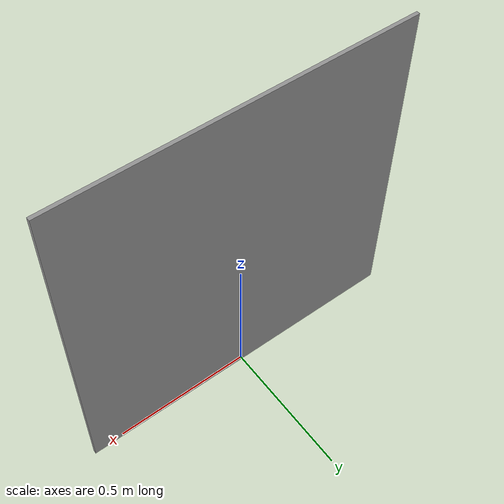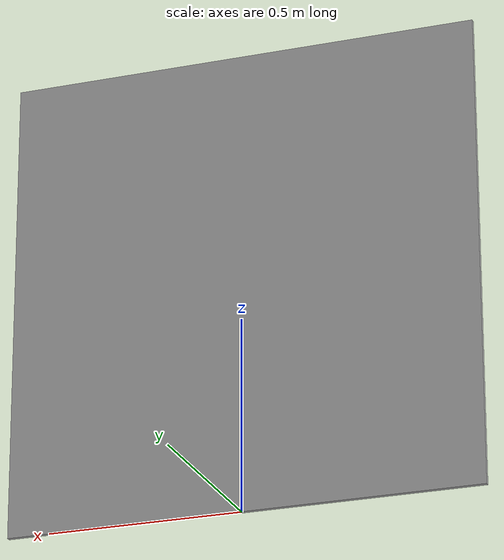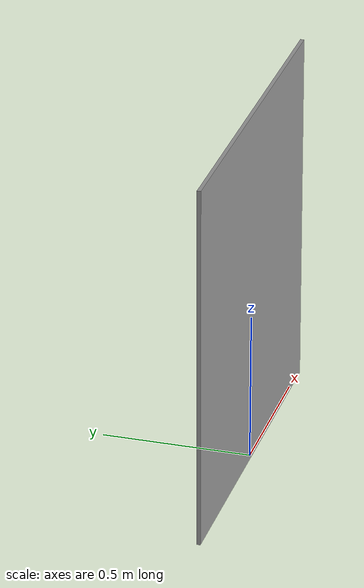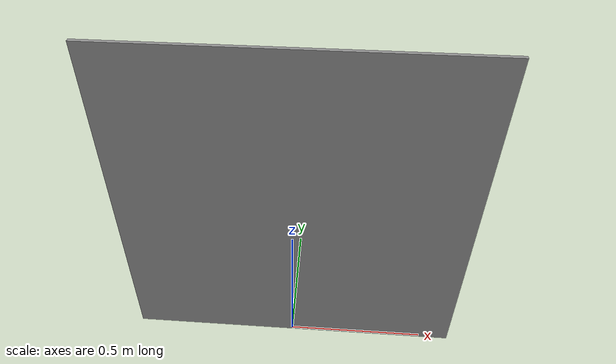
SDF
<?xml version="1.0" ?>
<sdf version="1.3">
  <model name="drywall_panel">
    <static>false</static>
    <link name="link">
      <pose>0 0 0.6096 0 0 0</pose>
      <collision name="collision">
        <geometry>
          <box>
            <size>1.2192 0.0127 1.2192</size>
          </box>
        </geometry>
      </collision>
      <visual name="visual">
        <cast_shadows>false</cast_shadows>
        <geometry>
          <box>
            <size>1.2192 0.0127 1.2192</size>
          </box>
        </geometry>
        <material>
          <script>
            <uri>model://grey_wall/materials/scripts</uri>
            <uri>model://grey_wall/materials/textures</uri>
            <name>vrc/grey_wall</name>
          </script>
        </material>
      </visual>
    </link>
  </model>
</sdf>
